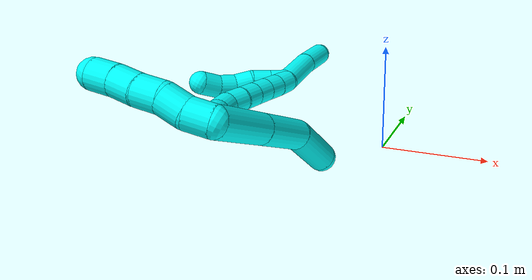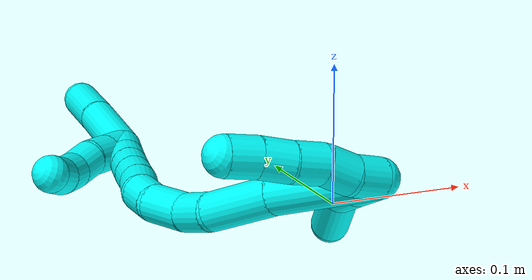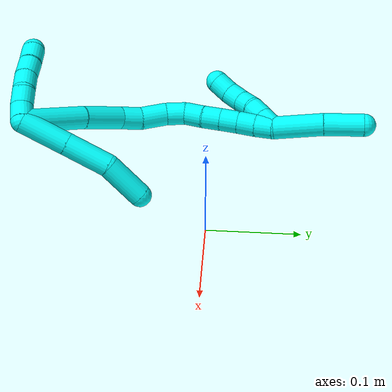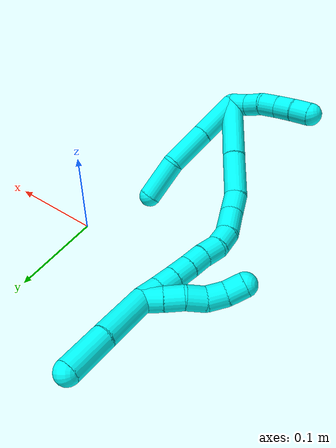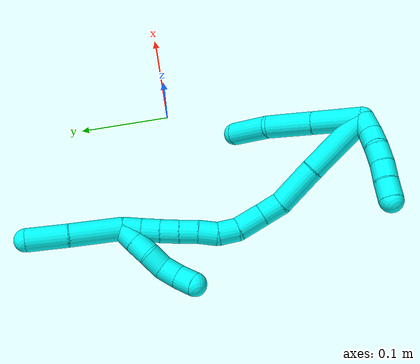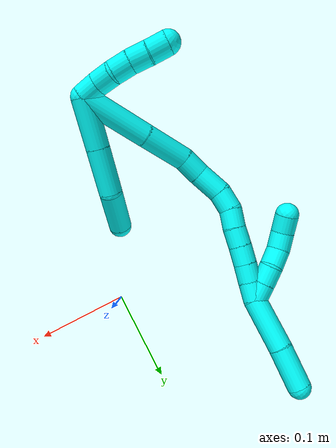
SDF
<sdf version="1.7">
 <world name="default">
  <model name="3">
   <static>0</static>
   <link name="3">
    <collision name="collision-cylinder-e_1_2_8">
     <pose>-0.021299 0.007018 -0.014025 -2.67764 -0.936127 2.26731</pose>
     <geometry><cylinder><radius>0.0125</radius><length>0.0529</length></cylinder></geometry>
     <surface>
      <friction><ode><mu>1.16</mu><mu2>1.16</mu2><slip1>0</slip1><slip2>0</slip2></ode></friction>
      <contact><ode><kp>1e+06</kp><kd>1</kd><max_vel>0</max_vel><min_depth>0.001</min_depth></ode></contact>
     </surface>
    </collision>
    <visual name="visual-cylinder-e_1_2_8">
     <pose>-0.021299 0.007018 -0.014025 -2.67764 -0.936127 2.26731</pose>
     <geometry><cylinder><radius>0.0125</radius><length>0.0529</length></cylinder></geometry>
     <material><ambient>0.003922 1 0.996078 1</ambient></material>
    </visual>
    <collision name="collision-cylinder-e_2_8_9">
     <pose>-0.06267 0.020612 -0.041365 -2.68287 -0.933762 2.27406</pose>
     <geometry><cylinder><radius>0.0125</radius><length>0.049937</length></cylinder></geometry>
     <surface>
      <friction><ode><mu>1.16</mu><mu2>1.16</mu2><slip1>0</slip1><slip2>0</slip2></ode></friction>
      <contact><ode><kp>1e+06</kp><kd>1</kd><max_vel>0</max_vel><min_depth>0.001</min_depth></ode></contact>
     </surface>
    </collision>
    <visual name="visual-cylinder-e_2_8_9">
     <pose>-0.06267 0.020612 -0.041365 -2.68287 -0.933762 2.27406</pose>
     <geometry><cylinder><radius>0.0125</radius><length>0.049937</length></cylinder></geometry>
     <material><ambient>0.003922 1 0.996078 1</ambient></material>
    </visual>
    <collision name="collision-cylinder-e_3_9_6">
     <pose>-0.101076 0.02553 -0.069418 3.02952 -0.890733 -2.90763</pose>
     <geometry><cylinder><radius>0.0125</radius><length>0.047164</length></cylinder></geometry>
     <surface>
      <friction><ode><mu>1.16</mu><mu2>1.16</mu2><slip1>0</slip1><slip2>0</slip2></ode></friction>
      <contact><ode><kp>1e+06</kp><kd>1</kd><max_vel>0</max_vel><min_depth>0.001</min_depth></ode></contact>
     </surface>
    </collision>
    <visual name="visual-cylinder-e_3_9_6">
     <pose>-0.101076 0.02553 -0.069418 3.02952 -0.890733 -2.90763</pose>
     <geometry><cylinder><radius>0.0125</radius><length>0.047164</length></cylinder></geometry>
     <material><ambient>0.003922 1 0.996078 1</ambient></material>
    </visual>
    <collision name="collision-cylinder-e_1_2_10">
     <pose>-0.001745 -0.001861 0.009669 0.190127 -0.175357 -0.016763</pose>
     <geometry><cylinder><radius>0.0125</radius><length>0.02</length></cylinder></geometry>
     <surface>
      <friction><ode><mu>1.16</mu><mu2>1.16</mu2><slip1>0</slip1><slip2>0</slip2></ode></friction>
      <contact><ode><kp>1e+06</kp><kd>1</kd><max_vel>0</max_vel><min_depth>0.001</min_depth></ode></contact>
     </surface>
    </collision>
    <visual name="visual-cylinder-e_1_2_10">
     <pose>-0.001745 -0.001861 0.009669 0.190127 -0.175357 -0.016763</pose>
     <geometry><cylinder><radius>0.0125</radius><length>0.02</length></cylinder></geometry>
     <material><ambient>0.003922 1 0.996078 1</ambient></material>
    </visual>
    <collision name="collision-cylinder-e_2_10_11">
     <pose>-0.005483 -0.003011 0.029112 -0.072587 -0.200697 0.007312</pose>
     <geometry><cylinder><radius>0.0125</radius><length>0.02</length></cylinder></geometry>
     <surface>
      <friction><ode><mu>1.16</mu><mu2>1.16</mu2><slip1>0</slip1><slip2>0</slip2></ode></friction>
      <contact><ode><kp>1e+06</kp><kd>1</kd><max_vel>0</max_vel><min_depth>0.001</min_depth></ode></contact>
     </surface>
    </collision>
    <visual name="visual-cylinder-e_2_10_11">
     <pose>-0.005483 -0.003011 0.029112 -0.072587 -0.200697 0.007312</pose>
     <geometry><cylinder><radius>0.0125</radius><length>0.02</length></cylinder></geometry>
     <material><ambient>0.003922 1 0.996078 1</ambient></material>
    </visual>
    <collision name="collision-cylinder-e_3_11_12">
     <pose>-0.010599 -0.004015 0.048229 0.18144 -0.317589 -0.029134</pose>
     <geometry><cylinder><radius>0.0125</radius><length>0.02</length></cylinder></geometry>
     <surface>
      <friction><ode><mu>1.16</mu><mu2>1.16</mu2><slip1>0</slip1><slip2>0</slip2></ode></friction>
      <contact><ode><kp>1e+06</kp><kd>1</kd><max_vel>0</max_vel><min_depth>0.001</min_depth></ode></contact>
     </surface>
    </collision>
    <visual name="visual-cylinder-e_3_11_12">
     <pose>-0.010599 -0.004015 0.048229 0.18144 -0.317589 -0.029134</pose>
     <geometry><cylinder><radius>0.0125</radius><length>0.02</length></cylinder></geometry>
     <material><ambient>0.003922 1 0.996078 1</ambient></material>
    </visual>
    <collision name="collision-cylinder-e_4_12_13">
     <pose>-0.017606 -0.006368 0.066766 0.069423 -0.398931 -0.014039</pose>
     <geometry><cylinder><radius>0.0125</radius><length>0.02</length></cylinder></geometry>
     <surface>
      <friction><ode><mu>1.16</mu><mu2>1.16</mu2><slip1>0</slip1><slip2>0</slip2></ode></friction>
      <contact><ode><kp>1e+06</kp><kd>1</kd><max_vel>0</max_vel><min_depth>0.001</min_depth></ode></contact>
     </surface>
    </collision>
    <visual name="visual-cylinder-e_4_12_13">
     <pose>-0.017606 -0.006368 0.066766 0.069423 -0.398931 -0.014039</pose>
     <geometry><cylinder><radius>0.0125</radius><length>0.02</length></cylinder></geometry>
     <material><ambient>0.003922 1 0.996078 1</ambient></material>
    </visual>
    <collision name="collision-cylinder-e_5_13_5">
     <pose>-0.025214 -0.008717 0.08508 0.185283 -0.381566 -0.035883</pose>
     <geometry><cylinder><radius>0.0125</radius><length>0.02</length></cylinder></geometry>
     <surface>
      <friction><ode><mu>1.16</mu><mu2>1.16</mu2><slip1>0</slip1><slip2>0</slip2></ode></friction>
      <contact><ode><kp>1e+06</kp><kd>1</kd><max_vel>0</max_vel><min_depth>0.001</min_depth></ode></contact>
     </surface>
    </collision>
    <visual name="visual-cylinder-e_5_13_5">
     <pose>-0.025214 -0.008717 0.08508 0.185283 -0.381566 -0.035883</pose>
     <geometry><cylinder><radius>0.0125</radius><length>0.02</length></cylinder></geometry>
     <material><ambient>0.003922 1 0.996078 1</ambient></material>
    </visual>
    <collision name="collision-cylinder-e_1_2_14">
     <pose>-0.036534 0.001418 0.005815 -0.239123 -1.40842 0.203406</pose>
     <geometry><cylinder><radius>0.0125</radius><length>0.074043</length></cylinder></geometry>
     <surface>
      <friction><ode><mu>1.16</mu><mu2>1.16</mu2><slip1>0</slip1><slip2>0</slip2></ode></friction>
      <contact><ode><kp>1e+06</kp><kd>1</kd><max_vel>0</max_vel><min_depth>0.001</min_depth></ode></contact>
     </surface>
    </collision>
    <visual name="visual-cylinder-e_1_2_14">
     <pose>-0.036534 0.001418 0.005815 -0.239123 -1.40842 0.203406</pose>
     <geometry><cylinder><radius>0.0125</radius><length>0.074043</length></cylinder></geometry>
     <material><ambient>0.003922 1 0.996078 1</ambient></material>
    </visual>
    <collision name="collision-cylinder-e_2_14_15">
     <pose>-0.097315 0.001928 0.014766 0.281425 -1.43693 -0.246448</pose>
     <geometry><cylinder><radius>0.0125</radius><length>0.048932</length></cylinder></geometry>
     <surface>
      <friction><ode><mu>1.16</mu><mu2>1.16</mu2><slip1>0</slip1><slip2>0</slip2></ode></friction>
      <contact><ode><kp>1e+06</kp><kd>1</kd><max_vel>0</max_vel><min_depth>0.001</min_depth></ode></contact>
     </surface>
    </collision>
    <visual name="visual-cylinder-e_2_14_15">
     <pose>-0.097315 0.001928 0.014766 0.281425 -1.43693 -0.246448</pose>
     <geometry><cylinder><radius>0.0125</radius><length>0.048932</length></cylinder></geometry>
     <material><ambient>0.003922 1 0.996078 1</ambient></material>
    </visual>
    <collision name="collision-cylinder-e_3_15_16">
     <pose>-0.133257 0.00347 0.017734 -1.63972 -1.36393 1.43187</pose>
     <geometry><cylinder><radius>0.0125</radius><length>0.023898</length></cylinder></geometry>
     <surface>
      <friction><ode><mu>1.16</mu><mu2>1.16</mu2><slip1>0</slip1><slip2>0</slip2></ode></friction>
      <contact><ode><kp>1e+06</kp><kd>1</kd><max_vel>0</max_vel><min_depth>0.001</min_depth></ode></contact>
     </surface>
    </collision>
    <visual name="visual-cylinder-e_3_15_16">
     <pose>-0.133257 0.00347 0.017734 -1.63972 -1.36393 1.43187</pose>
     <geometry><cylinder><radius>0.0125</radius><length>0.023898</length></cylinder></geometry>
     <material><ambient>0.003922 1 0.996078 1</ambient></material>
    </visual>
    <collision name="collision-cylinder-e_4_16_17">
     <pose>-0.158813 0.011688 0.019407 -1.26181 -1.15886 0.891803</pose>
     <geometry><cylinder><radius>0.0125</radius><length>0.030255</length></cylinder></geometry>
     <surface>
      <friction><ode><mu>1.16</mu><mu2>1.16</mu2><slip1>0</slip1><slip2>0</slip2></ode></friction>
      <contact><ode><kp>1e+06</kp><kd>1</kd><max_vel>0</max_vel><min_depth>0.001</min_depth></ode></contact>
     </surface>
    </collision>
    <visual name="visual-cylinder-e_4_16_17">
     <pose>-0.158813 0.011688 0.019407 -1.26181 -1.15886 0.891803</pose>
     <geometry><cylinder><radius>0.0125</radius><length>0.030255</length></cylinder></geometry>
     <material><ambient>0.003922 1 0.996078 1</ambient></material>
    </visual>
    <collision name="collision-cylinder-e_5_17_18">
     <pose>-0.181645 0.02358 0.019923 -1.78412 -0.96121 1.1477</pose>
     <geometry><cylinder><radius>0.0125</radius><length>0.021881</length></cylinder></geometry>
     <surface>
      <friction><ode><mu>1.16</mu><mu2>1.16</mu2><slip1>0</slip1><slip2>0</slip2></ode></friction>
      <contact><ode><kp>1e+06</kp><kd>1</kd><max_vel>0</max_vel><min_depth>0.001</min_depth></ode></contact>
     </surface>
    </collision>
    <visual name="visual-cylinder-e_5_17_18">
     <pose>-0.181645 0.02358 0.019923 -1.78412 -0.96121 1.1477</pose>
     <geometry><cylinder><radius>0.0125</radius><length>0.021881</length></cylinder></geometry>
     <material><ambient>0.003922 1 0.996078 1</ambient></material>
    </visual>
    <collision name="collision-cylinder-e_6_18_19">
     <pose>-0.197404 0.036248 0.014328 -2.14863 -0.715207 1.20764</pose>
     <geometry><cylinder><radius>0.0125</radius><length>0.020705</length></cylinder></geometry>
     <surface>
      <friction><ode><mu>1.16</mu><mu2>1.16</mu2><slip1>0</slip1><slip2>0</slip2></ode></friction>
      <contact><ode><kp>1e+06</kp><kd>1</kd><max_vel>0</max_vel><min_depth>0.001</min_depth></ode></contact>
     </surface>
    </collision>
    <visual name="visual-cylinder-e_6_18_19">
     <pose>-0.197404 0.036248 0.014328 -2.14863 -0.715207 1.20764</pose>
     <geometry><cylinder><radius>0.0125</radius><length>0.020705</length></cylinder></geometry>
     <material><ambient>0.003922 1 0.996078 1</ambient></material>
    </visual>
    <collision name="collision-cylinder-e_7_19_20">
     <pose>-0.211633 0.048752 0.00659 -2.09813 -0.823573 1.29943</pose>
     <geometry><cylinder><radius>0.0125</radius><length>0.020286</length></cylinder></geometry>
     <surface>
      <friction><ode><mu>1.16</mu><mu2>1.16</mu2><slip1>0</slip1><slip2>0</slip2></ode></friction>
      <contact><ode><kp>1e+06</kp><kd>1</kd><max_vel>0</max_vel><min_depth>0.001</min_depth></ode></contact>
     </surface>
    </collision>
    <visual name="visual-cylinder-e_7_19_20">
     <pose>-0.211633 0.048752 0.00659 -2.09813 -0.823573 1.29943</pose>
     <geometry><cylinder><radius>0.0125</radius><length>0.020286</length></cylinder></geometry>
     <material><ambient>0.003922 1 0.996078 1</ambient></material>
    </visual>
    <collision name="collision-cylinder-e_8_20_21">
     <pose>-0.226177 0.060732 -0.000521 -2.11463 -0.789896 1.27308</pose>
     <geometry><cylinder><radius>0.0125</radius><length>0.02</length></cylinder></geometry>
     <surface>
      <friction><ode><mu>1.16</mu><mu2>1.16</mu2><slip1>0</slip1><slip2>0</slip2></ode></friction>
      <contact><ode><kp>1e+06</kp><kd>1</kd><max_vel>0</max_vel><min_depth>0.001</min_depth></ode></contact>
     </surface>
    </collision>
    <visual name="visual-cylinder-e_8_20_21">
     <pose>-0.226177 0.060732 -0.000521 -2.11463 -0.789896 1.27308</pose>
     <geometry><cylinder><radius>0.0125</radius><length>0.02</length></cylinder></geometry>
     <material><ambient>0.003922 1 0.996078 1</ambient></material>
    </visual>
    <collision name="collision-cylinder-e_9_21_22">
     <pose>-0.240285 0.072763 -0.008016 -2.14102 -0.776152 1.28419</pose>
     <geometry><cylinder><radius>0.0125</radius><length>0.02</length></cylinder></geometry>
     <surface>
      <friction><ode><mu>1.16</mu><mu2>1.16</mu2><slip1>0</slip1><slip2>0</slip2></ode></friction>
      <contact><ode><kp>1e+06</kp><kd>1</kd><max_vel>0</max_vel><min_depth>0.001</min_depth></ode></contact>
     </surface>
    </collision>
    <visual name="visual-cylinder-e_9_21_22">
     <pose>-0.240285 0.072763 -0.008016 -2.14102 -0.776152 1.28419</pose>
     <geometry><cylinder><radius>0.0125</radius><length>0.02</length></cylinder></geometry>
     <material><ambient>0.003922 1 0.996078 1</ambient></material>
    </visual>
    <collision name="collision-cylinder-e_10_22_1">
     <pose>-0.254042 0.085261 -0.015375 -2.06612 -0.74113 1.15483</pose>
     <geometry><cylinder><radius>0.0125</radius><length>0.020001</length></cylinder></geometry>
     <surface>
      <friction><ode><mu>1.16</mu><mu2>1.16</mu2><slip1>0</slip1><slip2>0</slip2></ode></friction>
      <contact><ode><kp>1e+06</kp><kd>1</kd><max_vel>0</max_vel><min_depth>0.001</min_depth></ode></contact>
     </surface>
    </collision>
    <visual name="visual-cylinder-e_10_22_1">
     <pose>-0.254042 0.085261 -0.015375 -2.06612 -0.74113 1.15483</pose>
     <geometry><cylinder><radius>0.0125</radius><length>0.020001</length></cylinder></geometry>
     <material><ambient>0.003922 1 0.996078 1</ambient></material>
    </visual>
    <collision name="collision-cylinder-e_1_1_23">
     <pose>-0.259165 0.086459 -0.010555 0.566241 0.163605 0.047696</pose>
     <geometry><cylinder><radius>0.0125</radius><length>0.02</length></cylinder></geometry>
     <surface>
      <friction><ode><mu>1.16</mu><mu2>1.16</mu2><slip1>0</slip1><slip2>0</slip2></ode></friction>
      <contact><ode><kp>1e+06</kp><kd>1</kd><max_vel>0</max_vel><min_depth>0.001</min_depth></ode></contact>
     </surface>
    </collision>
    <visual name="visual-cylinder-e_1_1_23">
     <pose>-0.259165 0.086459 -0.010555 0.566241 0.163605 0.047696</pose>
     <geometry><cylinder><radius>0.0125</radius><length>0.02</length></cylinder></geometry>
     <material><ambient>0.003922 1 0.996078 1</ambient></material>
    </visual>
    <collision name="collision-cylinder-e_2_23_24">
     <pose>-0.255513 0.075915 0.006038 0.56589 0.203698 0.059412</pose>
     <geometry><cylinder><radius>0.0125</radius><length>0.02</length></cylinder></geometry>
     <surface>
      <friction><ode><mu>1.16</mu><mu2>1.16</mu2><slip1>0</slip1><slip2>0</slip2></ode></friction>
      <contact><ode><kp>1e+06</kp><kd>1</kd><max_vel>0</max_vel><min_depth>0.001</min_depth></ode></contact>
     </surface>
    </collision>
    <visual name="visual-cylinder-e_2_23_24">
     <pose>-0.255513 0.075915 0.006038 0.56589 0.203698 0.059412</pose>
     <geometry><cylinder><radius>0.0125</radius><length>0.02</length></cylinder></geometry>
     <material><ambient>0.003922 1 0.996078 1</ambient></material>
    </visual>
    <collision name="collision-cylinder-e_3_24_25">
     <pose>-0.25259 0.063601 0.021326 0.78841 0.09012 0.037509</pose>
     <geometry><cylinder><radius>0.0125</radius><length>0.02</length></cylinder></geometry>
     <surface>
      <friction><ode><mu>1.16</mu><mu2>1.16</mu2><slip1>0</slip1><slip2>0</slip2></ode></friction>
      <contact><ode><kp>1e+06</kp><kd>1</kd><max_vel>0</max_vel><min_depth>0.001</min_depth></ode></contact>
     </surface>
    </collision>
    <visual name="visual-cylinder-e_3_24_25">
     <pose>-0.25259 0.063601 0.021326 0.78841 0.09012 0.037509</pose>
     <geometry><cylinder><radius>0.0125</radius><length>0.02</length></cylinder></geometry>
     <material><ambient>0.003922 1 0.996078 1</ambient></material>
    </visual>
    <collision name="collision-cylinder-e_4_25_26">
     <pose>-0.247837 0.051171 0.035854 0.620613 0.395592 0.128357</pose>
     <geometry><cylinder><radius>0.0125</radius><length>0.02</length></cylinder></geometry>
     <surface>
      <friction><ode><mu>1.16</mu><mu2>1.16</mu2><slip1>0</slip1><slip2>0</slip2></ode></friction>
      <contact><ode><kp>1e+06</kp><kd>1</kd><max_vel>0</max_vel><min_depth>0.001</min_depth></ode></contact>
     </surface>
    </collision>
    <visual name="visual-cylinder-e_4_25_26">
     <pose>-0.247837 0.051171 0.035854 0.620613 0.395592 0.128357</pose>
     <geometry><cylinder><radius>0.0125</radius><length>0.02</length></cylinder></geometry>
     <material><ambient>0.003922 1 0.996078 1</ambient></material>
    </visual>
    <collision name="collision-cylinder-e_5_26_4">
     <pose>-0.238812 0.042713 0.051342 0.369511 0.54352 0.10406</pose>
     <geometry><cylinder><radius>0.0125</radius><length>0.02</length></cylinder></geometry>
     <surface>
      <friction><ode><mu>1.16</mu><mu2>1.16</mu2><slip1>0</slip1><slip2>0</slip2></ode></friction>
      <contact><ode><kp>1e+06</kp><kd>1</kd><max_vel>0</max_vel><min_depth>0.001</min_depth></ode></contact>
     </surface>
    </collision>
    <visual name="visual-cylinder-e_5_26_4">
     <pose>-0.238812 0.042713 0.051342 0.369511 0.54352 0.10406</pose>
     <geometry><cylinder><radius>0.0125</radius><length>0.02</length></cylinder></geometry>
     <material><ambient>0.003922 1 0.996078 1</ambient></material>
    </visual>
    <collision name="collision-cylinder-e_1_1_27">
     <pose>-0.281502 0.10992 -0.022566 -1.77088 -0.840651 1.00062</pose>
     <geometry><cylinder><radius>0.0125</radius><length>0.055589</length></cylinder></geometry>
     <surface>
      <friction><ode><mu>1.16</mu><mu2>1.16</mu2><slip1>0</slip1><slip2>0</slip2></ode></friction>
      <contact><ode><kp>1e+06</kp><kd>1</kd><max_vel>0</max_vel><min_depth>0.001</min_depth></ode></contact>
     </surface>
    </collision>
    <visual name="visual-cylinder-e_1_1_27">
     <pose>-0.281502 0.10992 -0.022566 -1.77088 -0.840651 1.00062</pose>
     <geometry><cylinder><radius>0.0125</radius><length>0.055589</length></cylinder></geometry>
     <material><ambient>0.003922 1 0.996078 1</ambient></material>
    </visual>
    <collision name="collision-cylinder-e_2_27_3">
     <pose>-0.319282 0.141563 -0.030733 -1.89196 -0.876914 1.15297</pose>
     <geometry><cylinder><radius>0.0125</radius><length>0.044411</length></cylinder></geometry>
     <surface>
      <friction><ode><mu>1.16</mu><mu2>1.16</mu2><slip1>0</slip1><slip2>0</slip2></ode></friction>
      <contact><ode><kp>1e+06</kp><kd>1</kd><max_vel>0</max_vel><min_depth>0.001</min_depth></ode></contact>
     </surface>
    </collision>
    <visual name="visual-cylinder-e_2_27_3">
     <pose>-0.319282 0.141563 -0.030733 -1.89196 -0.876914 1.15297</pose>
     <geometry><cylinder><radius>0.0125</radius><length>0.044411</length></cylinder></geometry>
     <material><ambient>0.003922 1 0.996078 1</ambient></material>
    </visual>
    <collision name="collision-sphere-3">
     <pose>-0.336353 0.155038 -0.035216 0 -0 0</pose>
     <geometry><sphere><radius>0.0125</radius></sphere></geometry>
     <surface>
      <friction><ode><mu>1.16</mu><mu2>1.16</mu2><slip1>0</slip1><slip2>0</slip2></ode></friction>
      <contact><ode><kp>1e+06</kp><kd>1</kd><max_vel>0</max_vel><min_depth>0.001</min_depth></ode></contact>
     </surface>
    </collision>
    <visual name="visual-sphere-3">
     <pose>-0.336353 0.155038 -0.035216 0 -0 0</pose>
     <geometry><sphere><radius>0.0125</radius></sphere></geometry>
     <material><ambient>0.003922 1 0.996078 1</ambient></material>
    </visual>
    <collision name="collision-sphere-27">
     <pose>-0.302211 0.128088 -0.02625 0 -0 0</pose>
     <geometry><sphere><radius>0.0125</radius></sphere></geometry>
     <surface>
      <friction><ode><mu>1.16</mu><mu2>1.16</mu2><slip1>0</slip1><slip2>0</slip2></ode></friction>
      <contact><ode><kp>1e+06</kp><kd>1</kd><max_vel>0</max_vel><min_depth>0.001</min_depth></ode></contact>
     </surface>
    </collision>
    <visual name="visual-sphere-27">
     <pose>-0.302211 0.128088 -0.02625 0 -0 0</pose>
     <geometry><sphere><radius>0.0125</radius></sphere></geometry>
     <material><ambient>0.003922 1 0.996078 1</ambient></material>
    </visual>
    <collision name="collision-sphere-4">
     <pose>-0.23364 0.039622 0.059324 0 -0 0</pose>
     <geometry><sphere><radius>0.0125</radius></sphere></geometry>
     <surface>
      <friction><ode><mu>1.16</mu><mu2>1.16</mu2><slip1>0</slip1><slip2>0</slip2></ode></friction>
      <contact><ode><kp>1e+06</kp><kd>1</kd><max_vel>0</max_vel><min_depth>0.001</min_depth></ode></contact>
     </surface>
    </collision>
    <visual name="visual-sphere-4">
     <pose>-0.23364 0.039622 0.059324 0 -0 0</pose>
     <geometry><sphere><radius>0.0125</radius></sphere></geometry>
     <material><ambient>0.003922 1 0.996078 1</ambient></material>
    </visual>
    <collision name="collision-sphere-26">
     <pose>-0.243983 0.045805 0.043361 0 -0 0</pose>
     <geometry><sphere><radius>0.0125</radius></sphere></geometry>
     <surface>
      <friction><ode><mu>1.16</mu><mu2>1.16</mu2><slip1>0</slip1><slip2>0</slip2></ode></friction>
      <contact><ode><kp>1e+06</kp><kd>1</kd><max_vel>0</max_vel><min_depth>0.001</min_depth></ode></contact>
     </surface>
    </collision>
    <visual name="visual-sphere-26">
     <pose>-0.243983 0.045805 0.043361 0 -0 0</pose>
     <geometry><sphere><radius>0.0125</radius></sphere></geometry>
     <material><ambient>0.003922 1 0.996078 1</ambient></material>
    </visual>
    <collision name="collision-sphere-25">
     <pose>-0.25169 0.056537 0.028347 0 -0 0</pose>
     <geometry><sphere><radius>0.0125</radius></sphere></geometry>
     <surface>
      <friction><ode><mu>1.16</mu><mu2>1.16</mu2><slip1>0</slip1><slip2>0</slip2></ode></friction>
      <contact><ode><kp>1e+06</kp><kd>1</kd><max_vel>0</max_vel><min_depth>0.001</min_depth></ode></contact>
     </surface>
    </collision>
    <visual name="visual-sphere-25">
     <pose>-0.25169 0.056537 0.028347 0 -0 0</pose>
     <geometry><sphere><radius>0.0125</radius></sphere></geometry>
     <material><ambient>0.003922 1 0.996078 1</ambient></material>
    </visual>
    <collision name="collision-sphere-24">
     <pose>-0.25349 0.070664 0.014305 0 -0 0</pose>
     <geometry><sphere><radius>0.0125</radius></sphere></geometry>
     <surface>
      <friction><ode><mu>1.16</mu><mu2>1.16</mu2><slip1>0</slip1><slip2>0</slip2></ode></friction>
      <contact><ode><kp>1e+06</kp><kd>1</kd><max_vel>0</max_vel><min_depth>0.001</min_depth></ode></contact>
     </surface>
    </collision>
    <visual name="visual-sphere-24">
     <pose>-0.25349 0.070664 0.014305 0 -0 0</pose>
     <geometry><sphere><radius>0.0125</radius></sphere></geometry>
     <material><ambient>0.003922 1 0.996078 1</ambient></material>
    </visual>
    <collision name="collision-sphere-23">
     <pose>-0.257536 0.081166 -0.002228 0 -0 0</pose>
     <geometry><sphere><radius>0.0125</radius></sphere></geometry>
     <surface>
      <friction><ode><mu>1.16</mu><mu2>1.16</mu2><slip1>0</slip1><slip2>0</slip2></ode></friction>
      <contact><ode><kp>1e+06</kp><kd>1</kd><max_vel>0</max_vel><min_depth>0.001</min_depth></ode></contact>
     </surface>
    </collision>
    <visual name="visual-sphere-23">
     <pose>-0.257536 0.081166 -0.002228 0 -0 0</pose>
     <geometry><sphere><radius>0.0125</radius></sphere></geometry>
     <material><ambient>0.003922 1 0.996078 1</ambient></material>
    </visual>
    <collision name="collision-sphere-1">
     <pose>-0.260793 0.091752 -0.018881 0 -0 0</pose>
     <geometry><sphere><radius>0.0125</radius></sphere></geometry>
     <surface>
      <friction><ode><mu>1.16</mu><mu2>1.16</mu2><slip1>0</slip1><slip2>0</slip2></ode></friction>
      <contact><ode><kp>1e+06</kp><kd>1</kd><max_vel>0</max_vel><min_depth>0.001</min_depth></ode></contact>
     </surface>
    </collision>
    <visual name="visual-sphere-1">
     <pose>-0.260793 0.091752 -0.018881 0 -0 0</pose>
     <geometry><sphere><radius>0.0125</radius></sphere></geometry>
     <material><ambient>0.003922 1 0.996078 1</ambient></material>
    </visual>
    <collision name="collision-sphere-22">
     <pose>-0.24729 0.07877 -0.011868 0 -0 0</pose>
     <geometry><sphere><radius>0.0125</radius></sphere></geometry>
     <surface>
      <friction><ode><mu>1.16</mu><mu2>1.16</mu2><slip1>0</slip1><slip2>0</slip2></ode></friction>
      <contact><ode><kp>1e+06</kp><kd>1</kd><max_vel>0</max_vel><min_depth>0.001</min_depth></ode></contact>
     </surface>
    </collision>
    <visual name="visual-sphere-22">
     <pose>-0.24729 0.07877 -0.011868 0 -0 0</pose>
     <geometry><sphere><radius>0.0125</radius></sphere></geometry>
     <material><ambient>0.003922 1 0.996078 1</ambient></material>
    </visual>
    <collision name="collision-sphere-21">
     <pose>-0.23328 0.066756 -0.004164 0 -0 0</pose>
     <geometry><sphere><radius>0.0125</radius></sphere></geometry>
     <surface>
      <friction><ode><mu>1.16</mu><mu2>1.16</mu2><slip1>0</slip1><slip2>0</slip2></ode></friction>
      <contact><ode><kp>1e+06</kp><kd>1</kd><max_vel>0</max_vel><min_depth>0.001</min_depth></ode></contact>
     </surface>
    </collision>
    <visual name="visual-sphere-21">
     <pose>-0.23328 0.066756 -0.004164 0 -0 0</pose>
     <geometry><sphere><radius>0.0125</radius></sphere></geometry>
     <material><ambient>0.003922 1 0.996078 1</ambient></material>
    </visual>
    <collision name="collision-sphere-11">
     <pose>-0.007476 -0.0023 0.038885 0 -0 0</pose>
     <geometry><sphere><radius>0.0125</radius></sphere></geometry>
     <surface>
      <friction><ode><mu>1.16</mu><mu2>1.16</mu2><slip1>0</slip1><slip2>0</slip2></ode></friction>
      <contact><ode><kp>1e+06</kp><kd>1</kd><max_vel>0</max_vel><min_depth>0.001</min_depth></ode></contact>
     </surface>
    </collision>
    <visual name="visual-sphere-11">
     <pose>-0.007476 -0.0023 0.038885 0 -0 0</pose>
     <geometry><sphere><radius>0.0125</radius></sphere></geometry>
     <material><ambient>0.003922 1 0.996078 1</ambient></material>
    </visual>
    <collision name="collision-sphere-10">
     <pose>-0.003489 -0.003722 0.019338 0 -0 0</pose>
     <geometry><sphere><radius>0.0125</radius></sphere></geometry>
     <surface>
      <friction><ode><mu>1.16</mu><mu2>1.16</mu2><slip1>0</slip1><slip2>0</slip2></ode></friction>
      <contact><ode><kp>1e+06</kp><kd>1</kd><max_vel>0</max_vel><min_depth>0.001</min_depth></ode></contact>
     </surface>
    </collision>
    <visual name="visual-sphere-10">
     <pose>-0.003489 -0.003722 0.019338 0 -0 0</pose>
     <geometry><sphere><radius>0.0125</radius></sphere></geometry>
     <material><ambient>0.003922 1 0.996078 1</ambient></material>
    </visual>
    <collision name="collision-sphere-6">
     <pose>-0.119412 0.023871 -0.084154 0 -0 0</pose>
     <geometry><sphere><radius>0.0125</radius></sphere></geometry>
     <surface>
      <friction><ode><mu>1.16</mu><mu2>1.16</mu2><slip1>0</slip1><slip2>0</slip2></ode></friction>
      <contact><ode><kp>1e+06</kp><kd>1</kd><max_vel>0</max_vel><min_depth>0.001</min_depth></ode></contact>
     </surface>
    </collision>
    <visual name="visual-sphere-6">
     <pose>-0.119412 0.023871 -0.084154 0 -0 0</pose>
     <geometry><sphere><radius>0.0125</radius></sphere></geometry>
     <material><ambient>0.003922 1 0.996078 1</ambient></material>
    </visual>
    <collision name="collision-sphere-9">
     <pose>-0.082741 0.027188 -0.054682 0 -0 0</pose>
     <geometry><sphere><radius>0.0125</radius></sphere></geometry>
     <surface>
      <friction><ode><mu>1.16</mu><mu2>1.16</mu2><slip1>0</slip1><slip2>0</slip2></ode></friction>
      <contact><ode><kp>1e+06</kp><kd>1</kd><max_vel>0</max_vel><min_depth>0.001</min_depth></ode></contact>
     </surface>
    </collision>
    <visual name="visual-sphere-9">
     <pose>-0.082741 0.027188 -0.054682 0 -0 0</pose>
     <geometry><sphere><radius>0.0125</radius></sphere></geometry>
     <material><ambient>0.003922 1 0.996078 1</ambient></material>
    </visual>
    <collision name="collision-sphere-2">
     <geometry><sphere><radius>0.0125</radius></sphere></geometry>
     <surface>
      <friction><ode><mu>1.16</mu><mu2>1.16</mu2><slip1>0</slip1><slip2>0</slip2></ode></friction>
      <contact><ode><kp>1e+06</kp><kd>1</kd><max_vel>0</max_vel><min_depth>0.001</min_depth></ode></contact>
     </surface>
    </collision>
    <visual name="visual-sphere-2">
     <geometry><sphere><radius>0.0125</radius></sphere></geometry>
     <material><ambient>0.003922 1 0.996078 1</ambient></material>
    </visual>
    <collision name="collision-sphere-19">
     <pose>-0.204192 0.042795 0.010059 0 -0 0</pose>
     <geometry><sphere><radius>0.0125</radius></sphere></geometry>
     <surface>
      <friction><ode><mu>1.16</mu><mu2>1.16</mu2><slip1>0</slip1><slip2>0</slip2></ode></friction>
      <contact><ode><kp>1e+06</kp><kd>1</kd><max_vel>0</max_vel><min_depth>0.001</min_depth></ode></contact>
     </surface>
    </collision>
    <visual name="visual-sphere-19">
     <pose>-0.204192 0.042795 0.010059 0 -0 0</pose>
     <geometry><sphere><radius>0.0125</radius></sphere></geometry>
     <material><ambient>0.003922 1 0.996078 1</ambient></material>
    </visual>
    <collision name="collision-sphere-8">
     <pose>-0.042598 0.014035 -0.028049 0 -0 0</pose>
     <geometry><sphere><radius>0.0125</radius></sphere></geometry>
     <surface>
      <friction><ode><mu>1.16</mu><mu2>1.16</mu2><slip1>0</slip1><slip2>0</slip2></ode></friction>
      <contact><ode><kp>1e+06</kp><kd>1</kd><max_vel>0</max_vel><min_depth>0.001</min_depth></ode></contact>
     </surface>
    </collision>
    <visual name="visual-sphere-8">
     <pose>-0.042598 0.014035 -0.028049 0 -0 0</pose>
     <geometry><sphere><radius>0.0125</radius></sphere></geometry>
     <material><ambient>0.003922 1 0.996078 1</ambient></material>
    </visual>
    <collision name="collision-sphere-12">
     <pose>-0.013722 -0.005729 0.057573 0 -0 0</pose>
     <geometry><sphere><radius>0.0125</radius></sphere></geometry>
     <surface>
      <friction><ode><mu>1.16</mu><mu2>1.16</mu2><slip1>0</slip1><slip2>0</slip2></ode></friction>
      <contact><ode><kp>1e+06</kp><kd>1</kd><max_vel>0</max_vel><min_depth>0.001</min_depth></ode></contact>
     </surface>
    </collision>
    <visual name="visual-sphere-12">
     <pose>-0.013722 -0.005729 0.057573 0 -0 0</pose>
     <geometry><sphere><radius>0.0125</radius></sphere></geometry>
     <material><ambient>0.003922 1 0.996078 1</ambient></material>
    </visual>
    <collision name="collision-sphere-13">
     <pose>-0.02149 -0.007007 0.075958 0 -0 0</pose>
     <geometry><sphere><radius>0.0125</radius></sphere></geometry>
     <surface>
      <friction><ode><mu>1.16</mu><mu2>1.16</mu2><slip1>0</slip1><slip2>0</slip2></ode></friction>
      <contact><ode><kp>1e+06</kp><kd>1</kd><max_vel>0</max_vel><min_depth>0.001</min_depth></ode></contact>
     </surface>
    </collision>
    <visual name="visual-sphere-13">
     <pose>-0.02149 -0.007007 0.075958 0 -0 0</pose>
     <geometry><sphere><radius>0.0125</radius></sphere></geometry>
     <material><ambient>0.003922 1 0.996078 1</ambient></material>
    </visual>
    <collision name="collision-sphere-5">
     <pose>-0.028938 -0.010427 0.094202 0 -0 0</pose>
     <geometry><sphere><radius>0.0125</radius></sphere></geometry>
     <surface>
      <friction><ode><mu>1.16</mu><mu2>1.16</mu2><slip1>0</slip1><slip2>0</slip2></ode></friction>
      <contact><ode><kp>1e+06</kp><kd>1</kd><max_vel>0</max_vel><min_depth>0.001</min_depth></ode></contact>
     </surface>
    </collision>
    <visual name="visual-sphere-5">
     <pose>-0.028938 -0.010427 0.094202 0 -0 0</pose>
     <geometry><sphere><radius>0.0125</radius></sphere></geometry>
     <material><ambient>0.003922 1 0.996078 1</ambient></material>
    </visual>
    <collision name="collision-sphere-14">
     <pose>-0.073069 0.002835 0.01163 0 -0 0</pose>
     <geometry><sphere><radius>0.0125</radius></sphere></geometry>
     <surface>
      <friction><ode><mu>1.16</mu><mu2>1.16</mu2><slip1>0</slip1><slip2>0</slip2></ode></friction>
      <contact><ode><kp>1e+06</kp><kd>1</kd><max_vel>0</max_vel><min_depth>0.001</min_depth></ode></contact>
     </surface>
    </collision>
    <visual name="visual-sphere-14">
     <pose>-0.073069 0.002835 0.01163 0 -0 0</pose>
     <geometry><sphere><radius>0.0125</radius></sphere></geometry>
     <material><ambient>0.003922 1 0.996078 1</ambient></material>
    </visual>
    <collision name="collision-sphere-15">
     <pose>-0.121562 0.001021 0.017903 0 -0 0</pose>
     <geometry><sphere><radius>0.0125</radius></sphere></geometry>
     <surface>
      <friction><ode><mu>1.16</mu><mu2>1.16</mu2><slip1>0</slip1><slip2>0</slip2></ode></friction>
      <contact><ode><kp>1e+06</kp><kd>1</kd><max_vel>0</max_vel><min_depth>0.001</min_depth></ode></contact>
     </surface>
    </collision>
    <visual name="visual-sphere-15">
     <pose>-0.121562 0.001021 0.017903 0 -0 0</pose>
     <geometry><sphere><radius>0.0125</radius></sphere></geometry>
     <material><ambient>0.003922 1 0.996078 1</ambient></material>
    </visual>
    <collision name="collision-sphere-16">
     <pose>-0.144951 0.005918 0.017565 0 -0 0</pose>
     <geometry><sphere><radius>0.0125</radius></sphere></geometry>
     <surface>
      <friction><ode><mu>1.16</mu><mu2>1.16</mu2><slip1>0</slip1><slip2>0</slip2></ode></friction>
      <contact><ode><kp>1e+06</kp><kd>1</kd><max_vel>0</max_vel><min_depth>0.001</min_depth></ode></contact>
     </surface>
    </collision>
    <visual name="visual-sphere-16">
     <pose>-0.144951 0.005918 0.017565 0 -0 0</pose>
     <geometry><sphere><radius>0.0125</radius></sphere></geometry>
     <material><ambient>0.003922 1 0.996078 1</ambient></material>
    </visual>
    <collision name="collision-sphere-17">
     <pose>-0.172675 0.017458 0.021249 0 -0 0</pose>
     <geometry><sphere><radius>0.0125</radius></sphere></geometry>
     <surface>
      <friction><ode><mu>1.16</mu><mu2>1.16</mu2><slip1>0</slip1><slip2>0</slip2></ode></friction>
      <contact><ode><kp>1e+06</kp><kd>1</kd><max_vel>0</max_vel><min_depth>0.001</min_depth></ode></contact>
     </surface>
    </collision>
    <visual name="visual-sphere-17">
     <pose>-0.172675 0.017458 0.021249 0 -0 0</pose>
     <geometry><sphere><radius>0.0125</radius></sphere></geometry>
     <material><ambient>0.003922 1 0.996078 1</ambient></material>
    </visual>
    <collision name="collision-sphere-18">
     <pose>-0.190615 0.029702 0.018597 0 -0 0</pose>
     <geometry><sphere><radius>0.0125</radius></sphere></geometry>
     <surface>
      <friction><ode><mu>1.16</mu><mu2>1.16</mu2><slip1>0</slip1><slip2>0</slip2></ode></friction>
      <contact><ode><kp>1e+06</kp><kd>1</kd><max_vel>0</max_vel><min_depth>0.001</min_depth></ode></contact>
     </surface>
    </collision>
    <visual name="visual-sphere-18">
     <pose>-0.190615 0.029702 0.018597 0 -0 0</pose>
     <geometry><sphere><radius>0.0125</radius></sphere></geometry>
     <material><ambient>0.003922 1 0.996078 1</ambient></material>
    </visual>
    <collision name="collision-sphere-20">
     <pose>-0.219074 0.054709 0.003121 0 -0 0</pose>
     <geometry><sphere><radius>0.0125</radius></sphere></geometry>
     <surface>
      <friction><ode><mu>1.16</mu><mu2>1.16</mu2><slip1>0</slip1><slip2>0</slip2></ode></friction>
      <contact><ode><kp>1e+06</kp><kd>1</kd><max_vel>0</max_vel><min_depth>0.001</min_depth></ode></contact>
     </surface>
    </collision>
    <visual name="visual-sphere-20">
     <pose>-0.219074 0.054709 0.003121 0 -0 0</pose>
     <geometry><sphere><radius>0.0125</radius></sphere></geometry>
     <material><ambient>0.003922 1 0.996078 1</ambient></material>
    </visual>
    <inertial>
     <pose>-0.143152 0.037582 0.000945 0 -0 0</pose>
     <mass>0.75</mass>
     <inertia><ixx>1.4e-05</ixx><ixy>0</ixy><ixz>0</ixz><iyy>0.00016</iyy><iyz>0</iyz><izz>8.7e-05</izz></inertia>
    </inertial>
   </link>
   <pose>-0.066903 -0.199236 0.08309 1.0243 -0.423387 -1.09935</pose>
  </model>
 </world>
</sdf>
